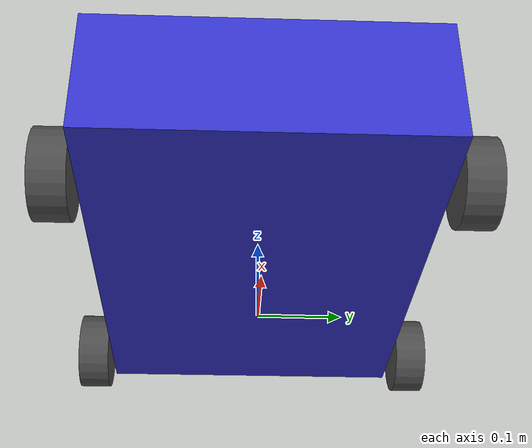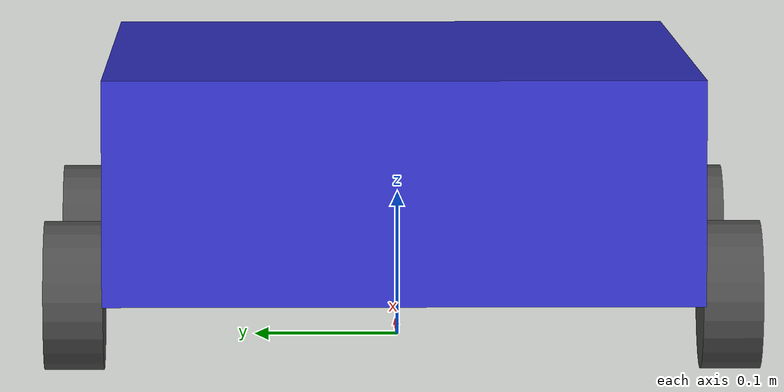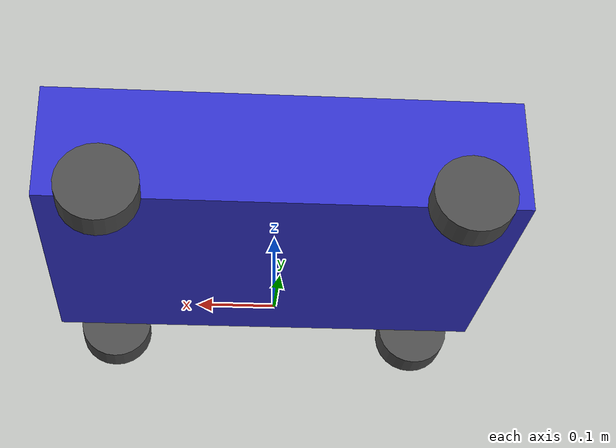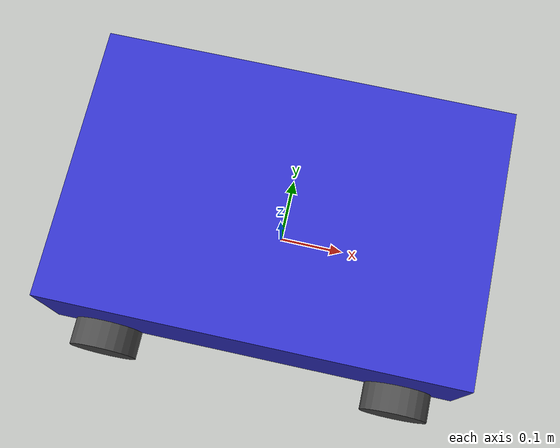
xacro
<?xml version="1.0"?>
<robot xmlns:xacro="http://www.ros.org/wiki/xacro" name="mecanum_base">

  <!-- ==================== PROPERTIES ==================== -->
  <xacro:property name="base_length" value="0.6"/>
  <xacro:property name="base_width" value="0.4"/>
  <xacro:property name="base_height" value="0.15"/>
  <xacro:property name="wheel_radius" value="0.05"/>
  <xacro:property name="wheel_width" value="0.04"/>
  <xacro:property name="wheel_offset_x" value="0.22"/>
  <xacro:property name="wheel_offset_y" value="0.22"/>
  <xacro:property name="base_mass" value="20.0"/>
  <xacro:property name="wheel_mass" value="1.0"/>

  <!-- Wheel damping/friction act as the motor holding torque. At 0.1 the
       arm load rolled the base ~5 mm/s. planar_move sets velocity directly,
       so driving is not affected. -->
  <xacro:property name="wheel_damping" value="10.0"/>
  <xacro:property name="wheel_friction" value="10.0"/>

  <!-- ==================== MACROS ==================== -->

  <!-- Inertia for a box shape -->
  <xacro:macro name="box_inertia" params="m x y z">
    <inertial>
      <mass value="${m}"/>
      <inertia ixx="${m*(y*y+z*z)/12}" ixy="0" ixz="0"
               iyy="${m*(x*x+z*z)/12}" iyz="0"
               izz="${m*(x*x+y*y)/12}"/>
    </inertial>
  </xacro:macro>

  <!-- Inertia for a cylinder shape -->
  <xacro:macro name="cylinder_inertia" params="m r h">
    <inertial>
      <mass value="${m}"/>
      <inertia ixx="${m*(3*r*r+h*h)/12}" ixy="0" ixz="0"
               iyy="${m*(3*r*r+h*h)/12}" iyz="0"
               izz="${m*r*r/2}"/>
    </inertial>
  </xacro:macro>

  <!-- Mecanum wheel macro -->
  <xacro:macro name="mecanum_wheel" params="prefix x_offset y_offset">
    <link name="${prefix}_wheel_link">
      <visual>
        <geometry>
          <cylinder radius="${wheel_radius}" length="${wheel_width}"/>
        </geometry>
        <material name="dark_grey">
          <color rgba="0.3 0.3 0.3 1.0"/>
        </material>
      </visual>
      <collision>
        <geometry>
          <cylinder radius="${wheel_radius}" length="${wheel_width}"/>
        </geometry>
      </collision>
      <xacro:cylinder_inertia m="${wheel_mass}" r="${wheel_radius}" h="${wheel_width}"/>
    </link>

    <joint name="${prefix}_wheel_joint" type="continuous">
      <parent link="base_link"/>
      <child link="${prefix}_wheel_link"/>
      <origin xyz="${x_offset} ${y_offset} 0.0" rpy="${-pi/2} 0 0"/>
      <axis xyz="0 0 1"/>
      <dynamics damping="${wheel_damping}" friction="${wheel_friction}"/>
    </joint>

    <transmission name="${prefix}_wheel_trans">
      <type>transmission_interface/SimpleTransmission</type>
      <joint name="${prefix}_wheel_joint">
        <hardwareInterface>hardware_interface/VelocityJointInterface</hardwareInterface>
      </joint>
      <actuator name="${prefix}_wheel_motor">
        <hardwareInterface>hardware_interface/VelocityJointInterface</hardwareInterface>
        <mechanicalReduction>1</mechanicalReduction>
      </actuator>
    </transmission>
  </xacro:macro>

  <!-- ==================== BASE LINK ==================== -->
  <link name="base_footprint"/>

  <joint name="base_footprint_joint" type="fixed">
    <parent link="base_footprint"/>
    <child link="base_link"/>
    <origin xyz="0 0 ${wheel_radius}" rpy="0 0 0"/>
  </joint>

  <link name="base_link">
    <visual>
      <geometry>
        <box size="${base_length} ${base_width} ${base_height}"/>
      </geometry>
      <origin xyz="0 0 ${base_height/2}" rpy="0 0 0"/>
      <material name="blue">
        <color rgba="0.2 0.2 0.8 1.0"/>
      </material>
    </visual>
    <collision>
      <geometry>
        <box size="${base_length} ${base_width} ${base_height}"/>
      </geometry>
      <origin xyz="0 0 ${base_height/2}" rpy="0 0 0"/>
    </collision>
    <inertial>
      <mass value="${base_mass}"/>
      <origin xyz="0 0 ${base_height/2}" rpy="0 0 0"/>
      <inertia ixx="${base_mass*(base_width*base_width+base_height*base_height)/12}" ixy="0" ixz="0"
               iyy="${base_mass*(base_length*base_length+base_height*base_height)/12}" iyz="0"
               izz="${base_mass*(base_length*base_length+base_width*base_width)/12}"/>
    </inertial>
  </link>

  <!-- ==================== WHEELS ==================== -->
  <xacro:mecanum_wheel prefix="front_left"  x_offset="${wheel_offset_x}"  y_offset="${wheel_offset_y}"/>
  <xacro:mecanum_wheel prefix="front_right" x_offset="${wheel_offset_x}"  y_offset="${-wheel_offset_y}"/>
  <xacro:mecanum_wheel prefix="rear_left"   x_offset="${-wheel_offset_x}" y_offset="${wheel_offset_y}"/>
  <xacro:mecanum_wheel prefix="rear_right"  x_offset="${-wheel_offset_x}" y_offset="${-wheel_offset_y}"/>

  <!-- ==================== ARM MOUNT POINT ==================== -->
  <link name="arm_mount_link"/>

  <joint name="arm_mount_joint" type="fixed">
    <parent link="base_link"/>
    <child link="arm_mount_link"/>
    <origin xyz="-0.05 0 ${base_height}" rpy="0 0 0"/>
  </joint>

</robot>
